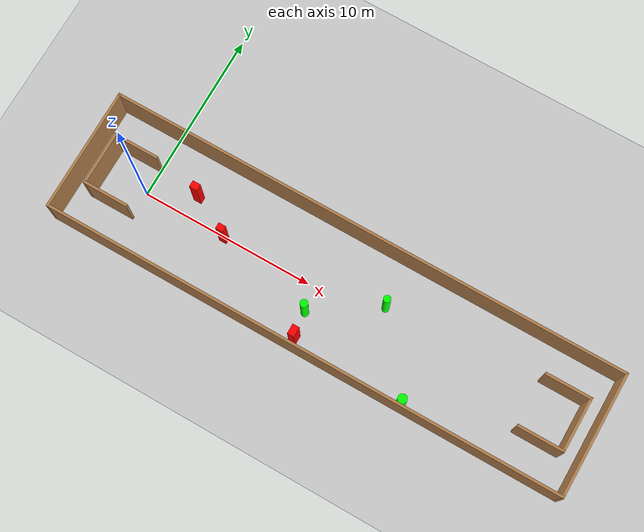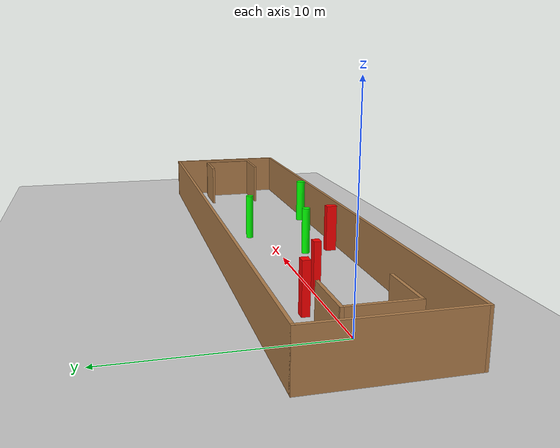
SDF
<sdf version="1.7">
 <world name="default">
  <light name="sun" type="directional">
   <pose>0 0 10 0 -0 0</pose>
   <diffuse>0.8 0.8 0.8 1</diffuse>
   <specular>0.2 0.2 0.2 1</specular>
   <attenuation>
    <range>1000</range>
    <constant>0.9</constant>
    <linear>0.01</linear>
    <quadratic>0.001</quadratic>
   </attenuation>
   <direction>-0.5 0.1 -0.9</direction>
   <spot><inner_angle>0</inner_angle><outer_angle>0</outer_angle><falloff>0</falloff></spot>
  </light>
  <model name="ground_plane">
   <static>1</static>
   <link name="link">
    <collision name="collision">
     <geometry><plane><normal>0 0 1</normal><size>100 100</size></plane></geometry>
     <surface>
      <contact><collide_bitmask>65535</collide_bitmask></contact>
      <friction><ode><mu>100</mu><mu2>50</mu2></ode></friction>
     </surface>
    </collision>
    <visual name="visual">
     <cast_shadows>0</cast_shadows>
     <geometry><plane><normal>0 0 1</normal><size>100 100</size></plane></geometry>
     <material>
      <script><uri>file://media/materials/scripts/gazebo.material</uri><name>Gazebo/Grey</name></script>
     </material>
    </visual>
   </link>
  </model>
  <gravity>0 0 -9.8</gravity>
  <magnetic_field>6e-06 2.3e-05 -4.2e-05</magnetic_field>
  <atmosphere type="adiabatic"/>
  <physics type="ode">
   <max_step_size>0.001</max_step_size>
   <real_time_factor>1</real_time_factor>
   <real_time_update_rate>1000</real_time_update_rate>
  </physics>
  <scene><ambient>0.4 0.4 0.4 1</ambient><background>0.7 0.7 0.7 1</background><shadows>1</shadows></scene>
  <spherical_coordinates>
   <surface_model>EARTH_WGS84</surface_model>
   <latitude_deg>0</latitude_deg>
   <longitude_deg>0</longitude_deg>
   <elevation>0</elevation>
   <heading_deg>0</heading_deg>
  </spherical_coordinates>
  <model name="my_base_walls">
   <link name="Wall_0">
    <collision name="Wall_0_Collision">
     <geometry><box><size>7.15 0.15 2.5</size></box></geometry>
     <pose>0 0 1.25 0 -0 0</pose>
    </collision>
    <visual name="Wall_0_Visual">
     <pose>0 0 1.25 0 -0 0</pose>
     <geometry><box><size>7.15 0.15 2.5</size></box></geometry>
     <material>
      <script><uri>file://media/materials/scripts/gazebo.material</uri><name>Gazebo/Wood</name></script>
      <ambient>1 1 1 1</ambient>
     </material>
     <meta><layer>0</layer></meta>
    </visual>
    <pose>-15 0 0 0 -0 1.5708</pose>
   </link>
   <link name="Wall_10">
    <collision name="Wall_10_Collision">
     <geometry><box><size>2.65 0.15 2.5</size></box></geometry>
     <pose>0 0 1.25 0 -0 0</pose>
    </collision>
    <visual name="Wall_10_Visual">
     <pose>0 0 1.25 0 -0 0</pose>
     <geometry><box><size>2.65 0.15 2.5</size></box></geometry>
     <material>
      <script><uri>file://media/materials/scripts/gazebo.material</uri><name>Gazebo/Wood</name></script>
      <ambient>1 1 1 1</ambient>
     </material>
     <meta><layer>0</layer></meta>
    </visual>
    <pose>-12.75 -1.5 0 0 -0 0</pose>
   </link>
   <link name="Wall_12">
    <collision name="Wall_12_Collision">
     <geometry><box><size>2.65 0.15 2.5</size></box></geometry>
     <pose>0 0 1.25 0 -0 0</pose>
    </collision>
    <visual name="Wall_12_Visual">
     <pose>0 0 1.25 0 -0 0</pose>
     <geometry><box><size>2.65 0.15 2.5</size></box></geometry>
     <material>
      <script><uri>file://media/materials/scripts/gazebo.material</uri><name>Gazebo/Wood</name></script>
      <ambient>1 1 1 1</ambient>
     </material>
     <meta><layer>0</layer></meta>
    </visual>
    <pose>-12.75 1.5 0 0 -0 0</pose>
   </link>
   <link name="Wall_14">
    <collision name="Wall_14_Collision">
     <geometry><box><size>3.15 0.15 2.5</size></box></geometry>
     <pose>0 0 1.25 0 -0 0</pose>
    </collision>
    <visual name="Wall_14_Visual">
     <pose>0 0 1.25 0 -0 0</pose>
     <geometry><box><size>3.15 0.15 2.5</size></box></geometry>
     <material>
      <script><uri>file://media/materials/scripts/gazebo.material</uri><name>Gazebo/Wood</name></script>
      <ambient>1 1 1 1</ambient>
     </material>
     <meta><layer>0</layer></meta>
    </visual>
    <pose>14 0 0 0 -0 -1.5708</pose>
   </link>
   <link name="Wall_15">
    <collision name="Wall_15_Collision">
     <geometry><box><size>2.65 0.15 2.5</size></box></geometry>
     <pose>0 0 1.25 0 -0 0</pose>
    </collision>
    <visual name="Wall_15_Visual">
     <pose>0 0 1.25 0 -0 0</pose>
     <geometry><box><size>2.65 0.15 2.5</size></box></geometry>
     <material>
      <script><uri>file://media/materials/scripts/gazebo.material</uri><name>Gazebo/Wood</name></script>
      <ambient>1 1 1 1</ambient>
     </material>
     <meta><layer>0</layer></meta>
    </visual>
    <pose>12.75 -1.5 0 0 -0 3.14159</pose>
   </link>
   <link name="Wall_17">
    <collision name="Wall_17_Collision">
     <geometry><box><size>2.65 0.15 2.5</size></box></geometry>
     <pose>0 0 1.25 0 -0 0</pose>
    </collision>
    <visual name="Wall_17_Visual">
     <pose>0 0 1.25 0 -0 0</pose>
     <geometry><box><size>2.65 0.15 2.5</size></box></geometry>
     <material>
      <script><uri>file://media/materials/scripts/gazebo.material</uri><name>Gazebo/Wood</name></script>
      <ambient>1 1 1 1</ambient>
     </material>
     <meta><layer>0</layer></meta>
    </visual>
    <pose>12.75 1.5 0 0 -0 3.14159</pose>
   </link>
   <link name="Wall_2">
    <collision name="Wall_2_Collision">
     <geometry><box><size>30.15 0.15 2.5</size></box></geometry>
     <pose>0 0 1.25 0 -0 0</pose>
    </collision>
    <visual name="Wall_2_Visual">
     <pose>0 0 1.25 0 -0 0</pose>
     <geometry><box><size>30.15 0.15 2.5</size></box></geometry>
     <material>
      <script><uri>file://media/materials/scripts/gazebo.material</uri><name>Gazebo/Wood</name></script>
      <ambient>1 1 1 1</ambient>
     </material>
     <meta><layer>0</layer></meta>
    </visual>
    <pose>-0 -3.5 0 0 -0 0</pose>
   </link>
   <link name="Wall_4">
    <collision name="Wall_4_Collision">
     <geometry><box><size>30.15 0.15 2.5</size></box></geometry>
     <pose>0 0 1.25 0 -0 0</pose>
    </collision>
    <visual name="Wall_4_Visual">
     <pose>0 0 1.25 0 -0 0</pose>
     <geometry><box><size>30.15 0.15 2.5</size></box></geometry>
     <material>
      <script><uri>file://media/materials/scripts/gazebo.material</uri><name>Gazebo/Wood</name></script>
      <ambient>1 1 1 1</ambient>
     </material>
     <meta><layer>0</layer></meta>
    </visual>
    <pose>-0 3.5 0 0 -0 0</pose>
   </link>
   <link name="Wall_6">
    <collision name="Wall_6_Collision">
     <geometry><box><size>7.15 0.15 2.5</size></box></geometry>
     <pose>0 0 1.25 0 -0 0</pose>
    </collision>
    <visual name="Wall_6_Visual">
     <pose>0 0 1.25 0 -0 0</pose>
     <geometry><box><size>7.15 0.15 2.5</size></box></geometry>
     <material>
      <script><uri>file://media/materials/scripts/gazebo.material</uri><name>Gazebo/Wood</name></script>
      <ambient>1 1 1 1</ambient>
     </material>
     <meta><layer>0</layer></meta>
    </visual>
    <pose>15 0 0 0 -0 -1.5708</pose>
   </link>
   <link name="Wall_9">
    <collision name="Wall_9_Collision">
     <geometry><box><size>3.15 0.15 2.5</size></box></geometry>
     <pose>0 0 1.25 0 -0 0</pose>
    </collision>
    <visual name="Wall_9_Visual">
     <pose>0 0 1.25 0 -0 0</pose>
     <geometry><box><size>3.15 0.15 2.5</size></box></geometry>
     <material>
      <script><uri>file://media/materials/scripts/gazebo.material</uri><name>Gazebo/Wood</name></script>
      <ambient>1 1 1 1</ambient>
     </material>
     <meta><layer>0</layer></meta>
    </visual>
    <pose>-14 0 0 0 -0 -1.5708</pose>
   </link>
   <static>1</static>
   <pose>11.5 0 0 0 -0 0</pose>
  </model>
  <model name="cylinder1">
   <static>1</static>
   <link name="link">
    <inertial>
     <mass>1</mass>
     <inertia><ixx>0.5</ixx><ixy>0</ixy><ixz>0</ixz><iyy>0.5</iyy><iyz>0</iyz><izz>1</izz></inertia>
    </inertial>
    <collision name="collision">
     <geometry><cylinder><radius>0.21949276224128877</radius><length>2.5</length></cylinder></geometry>
    </collision>
    <visual name="visual">
     <geometry><cylinder><radius>0.21949276224128877</radius><length>2.5</length></cylinder></geometry>
     <material>
      <ambient>0 1 0 1</ambient>
      <diffuse>0 1 0 1</diffuse>
      <specular>0.1 0.1 0.1 1</specular>
      <emissive>0 0 0 0</emissive>
     </material>
    </visual>
   </link>
   <pose>10.625076844957471 -1.4206521877841713 1.25 0 0 0</pose>
  </model>
  <model name="cylinder2">
   <static>1</static>
   <link name="link">
    <inertial>
     <mass>1</mass>
     <inertia><ixx>0.5</ixx><ixy>0</ixy><ixz>0</ixz><iyy>0.5</iyy><iyz>0</iyz><izz>1</izz></inertia>
    </inertial>
    <collision name="collision">
     <geometry><cylinder><radius>0.2635134145475778</radius><length>2.5</length></cylinder></geometry>
    </collision>
    <visual name="visual">
     <geometry><cylinder><radius>0.2635134145475778</radius><length>2.5</length></cylinder></geometry>
     <material>
      <ambient>0 1 0 1</ambient>
      <diffuse>0 1 0 1</diffuse>
      <specular>0.1 0.1 0.1 1</specular>
      <emissive>0 0 0 0</emissive>
     </material>
    </visual>
   </link>
   <pose>17.326956202127377 -3.1820738553633108 1.25 0 0 0</pose>
  </model>
  <model name="cylinder3">
   <static>1</static>
   <link name="link">
    <inertial>
     <mass>1</mass>
     <inertia><ixx>0.5</ixx><ixy>0</ixy><ixz>0</ixz><iyy>0.5</iyy><iyz>0</iyz><izz>1</izz></inertia>
    </inertial>
    <collision name="collision">
     <geometry><cylinder><radius>0.20391113307405195</radius><length>2.5</length></cylinder></geometry>
    </collision>
    <visual name="visual">
     <geometry><cylinder><radius>0.20391113307405195</radius><length>2.5</length></cylinder></geometry>
     <material>
      <ambient>0 1 0 1</ambient>
      <diffuse>0 1 0 1</diffuse>
      <specular>0.1 0.1 0.1 1</specular>
      <emissive>0 0 0 0</emissive>
     </material>
    </visual>
   </link>
   <pose>14.18783463003389 0.878299856233344 1.25 0 0 0</pose>
  </model>
  <model name="box1">
   <static>1</static>
   <link name="link">
    <inertial>
     <mass>1</mass>
     <inertia><ixx>0.083</ixx><ixy>0</ixy><ixz>0</ixz><iyy>0.083</iyy><iyz>0</iyz><izz>0.083</izz></inertia>
    </inertial>
    <collision name="collision">
     <geometry><box><size>0.38892303813676354 0.5651868592574983 2.5</size></box></geometry>
    </collision>
    <visual name="visual">
     <geometry><box><size>0.38892303813676354 0.5651868592574983 2.5</size></box></geometry>
     <material>
      <ambient>1 0 0 1</ambient>
      <diffuse>1 0 0 1</diffuse>
      <specular>0.1 0.1 0.1 1</specular>
      <emissive>0 0 0 0</emissive>
     </material>
    </visual>
    <sensor name="my_contact" type="contact">
     <contact><collision>box_collision</collision><topic>__default_topic__</topic></contact>
    </sensor>
   </link>
   <pose>10.853543369516107 -2.8917137282894827 1.25 0 0 0</pose>
  </model>
  <model name="box2">
   <static>1</static>
   <link name="link">
    <inertial>
     <mass>1</mass>
     <inertia><ixx>0.083</ixx><ixy>0</ixy><ixz>0</ixz><iyy>0.083</iyy><iyz>0</iyz><izz>0.083</izz></inertia>
    </inertial>
    <collision name="collision">
     <geometry><box><size>0.460252650633432 0.3796816693915581 2.5</size></box></geometry>
    </collision>
    <visual name="visual">
     <geometry><box><size>0.460252650633432 0.3796816693915581 2.5</size></box></geometry>
     <material>
      <ambient>1 0 0 1</ambient>
      <diffuse>1 0 0 1</diffuse>
      <specular>0.1 0.1 0.1 1</specular>
      <emissive>0 0 0 0</emissive>
     </material>
    </visual>
    <sensor name="my_contact" type="contact">
     <contact><collision>box_collision</collision><topic>__default_topic__</topic></contact>
    </sensor>
   </link>
   <pose>2.5736866572757684 1.1723710201689963 1.25 0 0 0</pose>
  </model>
  <model name="box3">
   <static>1</static>
   <link name="link">
    <inertial>
     <mass>1</mass>
     <inertia><ixx>0.083</ixx><ixy>0</ixy><ixz>0</ixz><iyy>0.083</iyy><iyz>0</iyz><izz>0.083</izz></inertia>
    </inertial>
    <collision name="collision">
     <geometry><box><size>0.4287456045598756 0.3455353170557349 2.5</size></box></geometry>
    </collision>
    <visual name="visual">
     <geometry><box><size>0.4287456045598756 0.3455353170557349 2.5</size></box></geometry>
     <material>
      <ambient>1 0 0 1</ambient>
      <diffuse>1 0 0 1</diffuse>
      <specular>0.1 0.1 0.1 1</specular>
      <emissive>0 0 0 0</emissive>
     </material>
    </visual>
    <sensor name="my_contact" type="contact">
     <contact><collision>box_collision</collision><topic>__default_topic__</topic></contact>
    </sensor>
   </link>
   <pose>4.893055992825953 -0.0889701689034168 1.25 0 0 0</pose>
  </model>
 </world>
</sdf>
